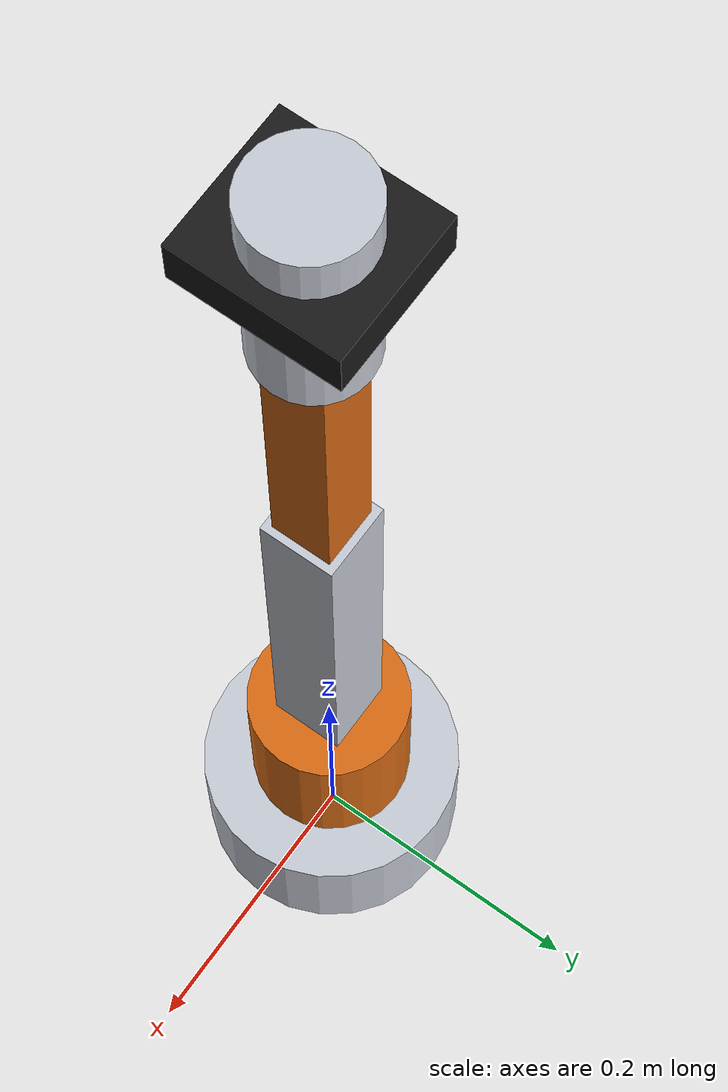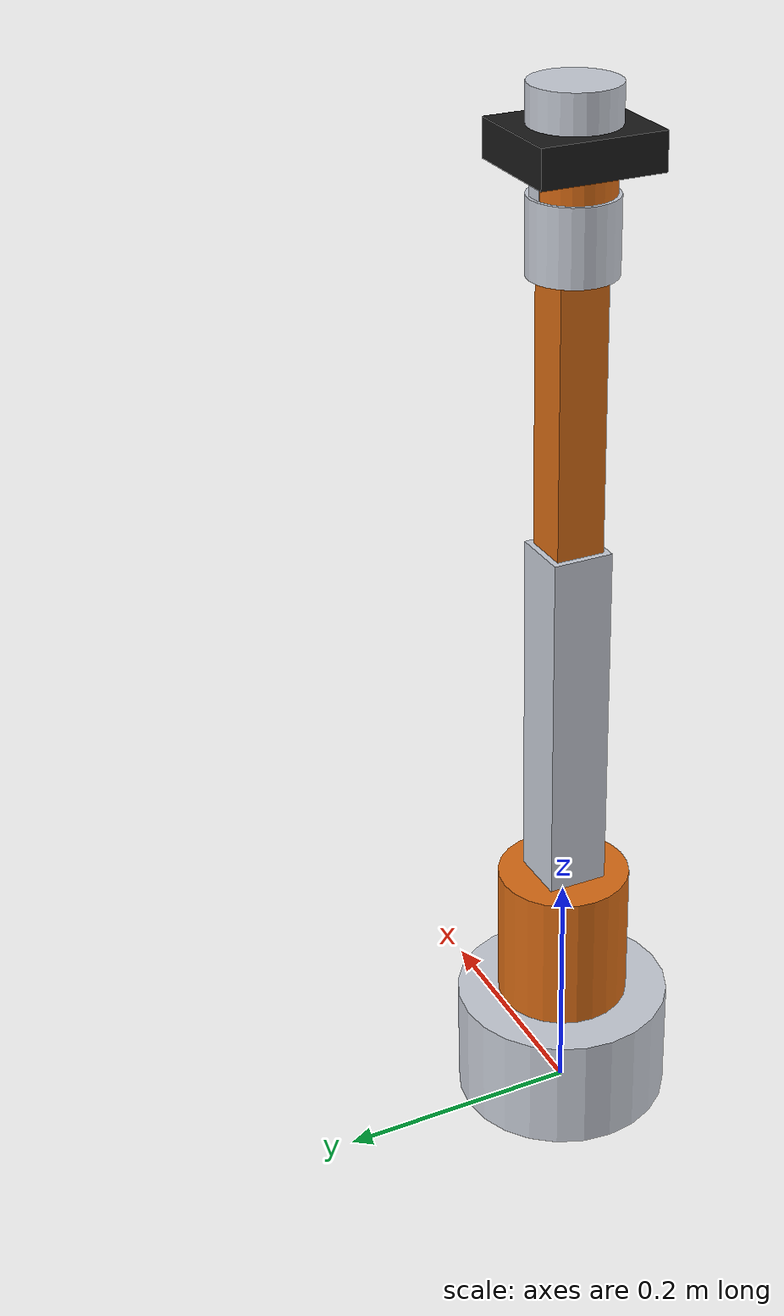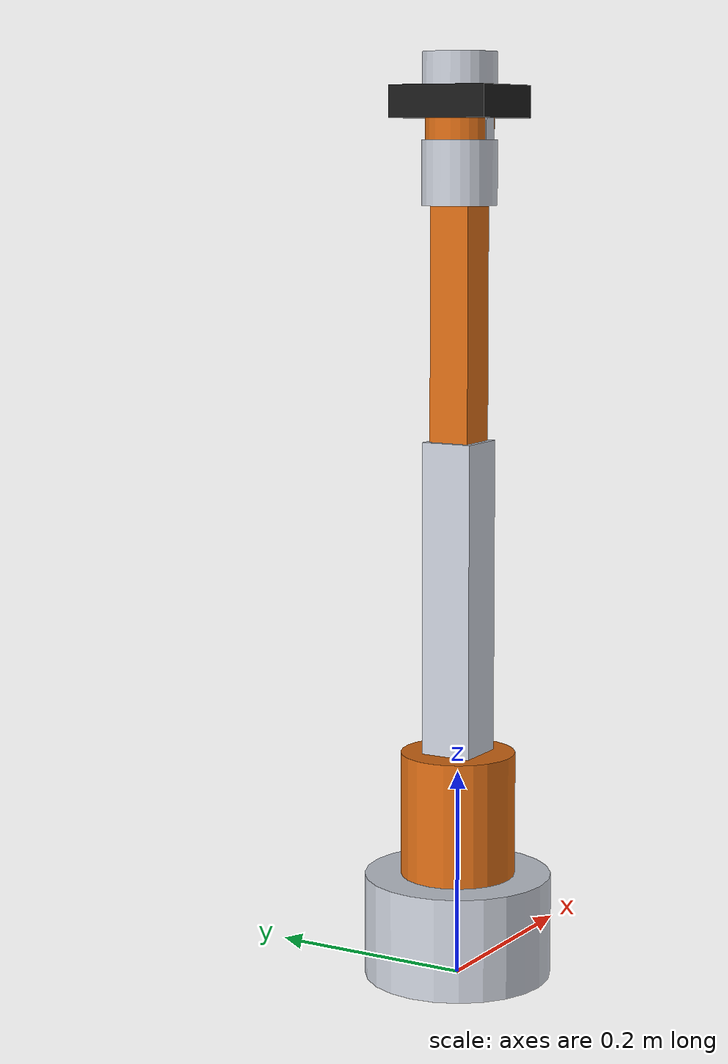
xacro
<?xml version="1.0"?>
<robot xmlns:xacro="http://www.ros.org/wiki/xacro" name="vg_arm">

  <!-- 手臂涂装避开红/绿/蓝检测区间，防止机身被当成方块 -->
  <xacro:arg name="controllers_file" default="$(find arm_description)/config/controllers.yaml"/>

  <material name="metal">
    <color rgba="0.78 0.80 0.84 1.0"/>
  </material>
  <material name="accent">
    <color rgba="0.85 0.42 0.08 1.0"/>
  </material>
  <material name="rubber">
    <color rgba="0.10 0.10 0.10 1.0"/>
  </material>

  <!-- 固定在 Gazebo 世界坐标，防止机械臂在重力下倾倒 -->
  <link name="world"/>
  <joint name="world_fixed" type="fixed">
    <parent link="world"/>
    <child link="base_link"/>
  </joint>

  <!-- base -->
  <link name="base_link">
    <visual>
      <origin xyz="0 0 0.05" rpy="0 0 0"/>
      <geometry>
        <cylinder radius="0.09" length="0.10"/>
      </geometry>
      <material name="metal"/>
    </visual>
    <collision>
      <origin xyz="0 0 0.05" rpy="0 0 0"/>
      <geometry>
        <cylinder radius="0.09" length="0.10"/>
      </geometry>
    </collision>
    <inertial>
      <origin xyz="0 0 0.05" rpy="0 0 0"/>
      <mass value="1.2"/>
      <inertia ixx="0.00343" ixy="0" ixz="0" iyy="0.00343" iyz="0" izz="0.00486"/>
    </inertial>
  </link>

  <!-- joint 1: base yaw -->
  <joint name="joint1" type="revolute">
    <parent link="base_link"/>
    <child link="link1"/>
    <origin xyz="0 0 0.10" rpy="0 0 0"/>
    <axis xyz="0 0 1"/>
    <limit lower="-3.1416" upper="3.1416" effort="30.0" velocity="1.5"/>
    <dynamics damping="0.2" friction="0.05"/>
  </joint>
  <link name="link1">
    <visual>
      <origin xyz="0 0 0.06" rpy="0 0 0"/>
      <geometry>
        <cylinder radius="0.055" length="0.12"/>
      </geometry>
      <material name="accent"/>
    </visual>
    <collision>
      <origin xyz="0 0 0.06" rpy="0 0 0"/>
      <geometry>
        <cylinder radius="0.055" length="0.12"/>
      </geometry>
    </collision>
    <inertial>
      <origin xyz="0 0 0.06" rpy="0 0 0"/>
      <mass value="0.8"/>
      <inertia ixx="0.001565" ixy="0" ixz="0" iyy="0.001565" iyz="0" izz="0.001210"/>
    </inertial>
  </link>

  <!-- joint 2: shoulder pitch -->
  <joint name="joint2" type="revolute">
    <parent link="link1"/>
    <child link="link2"/>
    <origin xyz="0 0 0.12" rpy="0 0 0"/>
    <axis xyz="0 1 0"/>
    <limit lower="-2.0" upper="2.0" effort="100.0" velocity="1.5"/>
    <dynamics damping="0.2" friction="0.05"/>
  </joint>
  <link name="link2">
    <visual>
      <origin xyz="0 0 0.15" rpy="0 0 0"/>
      <geometry>
        <box size="0.05 0.05 0.30"/>
      </geometry>
      <material name="metal"/>
    </visual>
    <collision>
      <origin xyz="0 0 0.15" rpy="0 0 0"/>
      <geometry>
        <box size="0.05 0.05 0.30"/>
      </geometry>
    </collision>
    <inertial>
      <origin xyz="0 0 0.15" rpy="0 0 0"/>
      <mass value="1.0"/>
      <inertia ixx="0.007708" ixy="0" ixz="0" iyy="0.007708" iyz="0" izz="0.000417"/>
    </inertial>
  </link>

  <!-- joint 3: elbow pitch -->
  <joint name="joint3" type="revolute">
    <parent link="link2"/>
    <child link="link3"/>
    <origin xyz="0 0 0.30" rpy="0 0 0"/>
    <axis xyz="0 1 0"/>
    <!-- effort 30 时远端目标（blue x≈0.48）descend 会被削顶，JTC 报 state tolerance；
         gz_ros2_control 的位置 PID 起步索取力矩远大于重力矩（实测约 2 N·m），故与 joint2 同放到 100 -->
    <limit lower="-2.5" upper="2.5" effort="100.0" velocity="1.5"/>
    <dynamics damping="0.2" friction="0.05"/>
  </joint>
  <link name="link3">
    <visual>
      <origin xyz="0 0 0.11" rpy="0 0 0"/>
      <geometry>
        <box size="0.04 0.04 0.22"/>
      </geometry>
      <material name="accent"/>
    </visual>
    <collision>
      <origin xyz="0 0 0.11" rpy="0 0 0"/>
      <geometry>
        <box size="0.04 0.04 0.22"/>
      </geometry>
    </collision>
    <inertial>
      <origin xyz="0 0 0.11" rpy="0 0 0"/>
      <mass value="0.7"/>
      <inertia ixx="0.002917" ixy="0" ixz="0" iyy="0.002917" iyz="0" izz="0.000187"/>
    </inertial>
  </link>

  <!-- joint 4: wrist roll -->
  <joint name="joint4" type="revolute">
    <parent link="link3"/>
    <child link="link4"/>
    <origin xyz="0 0 0.22" rpy="0 0 0"/>
    <axis xyz="1 0 0"/>
    <limit lower="-3.1416" upper="3.1416" effort="10.0" velocity="2.0"/>
    <dynamics damping="0.1" friction="0.02"/>
  </joint>
  <link name="link4">
    <visual>
      <origin xyz="0 0 0.03" rpy="0 0 0"/>
      <geometry>
        <cylinder radius="0.035" length="0.06"/>
      </geometry>
      <material name="metal"/>
    </visual>
    <collision>
      <origin xyz="0 0 0.03" rpy="0 0 0"/>
      <geometry>
        <cylinder radius="0.035" length="0.06"/>
      </geometry>
    </collision>
    <inertial>
      <origin xyz="0 0 0.03" rpy="0 0 0"/>
      <mass value="0.4"/>
      <inertia ixx="0.000243" ixy="0" ixz="0" iyy="0.000243" iyz="0" izz="0.000245"/>
    </inertial>
  </link>

  <!-- joint 5: wrist pitch（±3.1 才能让夹爪朝下抓取） -->
  <joint name="joint5" type="revolute">
    <parent link="link4"/>
    <child link="link5"/>
    <origin xyz="0 0 0.06" rpy="0 0 0"/>
    <axis xyz="0 1 0"/>
    <limit lower="-3.1" upper="3.1" effort="10.0" velocity="2.0"/>
    <dynamics damping="0.1" friction="0.02"/>
  </joint>
  <link name="link5">
    <visual>
      <origin xyz="0 0 0.025" rpy="0 0 0"/>
      <geometry>
        <cylinder radius="0.032" length="0.05"/>
      </geometry>
      <material name="accent"/>
    </visual>
    <collision>
      <origin xyz="0 0 0.025" rpy="0 0 0"/>
      <geometry>
        <cylinder radius="0.032" length="0.05"/>
      </geometry>
    </collision>
    <inertial>
      <origin xyz="0 0 0.025" rpy="0 0 0"/>
      <mass value="0.3"/>
      <inertia ixx="0.000139" ixy="0" ixz="0" iyy="0.000139" iyz="0" izz="0.000154"/>
    </inertial>
  </link>

  <!-- joint 6: wrist roll -->
  <joint name="joint6" type="revolute">
    <parent link="link5"/>
    <child link="tool0"/>
    <origin xyz="0 0 0.05" rpy="0 0 0"/>
    <axis xyz="1 0 0"/>
    <limit lower="-3.1416" upper="3.1416" effort="5.0" velocity="2.5"/>
    <dynamics damping="0.1" friction="0.02"/>
  </joint>
  <link name="tool0">
    <visual>
      <origin xyz="0 0 0.015" rpy="0 0 0"/>
      <geometry>
        <cylinder radius="0.035" length="0.03"/>
      </geometry>
      <material name="metal"/>
    </visual>
    <collision>
      <origin xyz="0 0 0.015" rpy="0 0 0"/>
      <geometry>
        <cylinder radius="0.035" length="0.03"/>
      </geometry>
    </collision>
    <inertial>
      <origin xyz="0 0 0.015" rpy="0 0 0"/>
      <mass value="0.25"/>
      <inertia ixx="0.0000953" ixy="0" ixz="0" iyy="0.0000953" iyz="0" izz="0.000153"/>
    </inertial>
  </link>

  <!--
    工具偏置：TCP +z 必须朝上，joint5/joint6 就得反向折约 127°，link5 的腕筒
    被折到两指正中间、深到与指尖同高，下探时整个插进方块体积（指间净空 70 mm，
    装不下腕筒 64 mm + 方块 50 mm）。夹爪整体下移 60 mm，TCP 落到 tool0 下方
    65 mm，腕部才能留在物体上方。
  -->
  <joint name="gripper_mount" type="fixed">
    <parent link="tool0"/>
    <child link="gripper_base"/>
    <origin xyz="0 0 -0.03" rpy="0 0 0"/>
  </joint>
  <link name="gripper_base">
    <visual>
      <origin xyz="0 0 0.015" rpy="0 0 0"/>
      <geometry>
        <box size="0.09 0.10 0.03"/>
      </geometry>
      <material name="rubber"/>
    </visual>
    <collision>
      <origin xyz="0 0 0.015" rpy="0 0 0"/>
      <geometry>
        <box size="0.09 0.10 0.03"/>
      </geometry>
    </collision>
    <inertial>
      <origin xyz="0 0 0.015" rpy="0 0 0"/>
      <mass value="0.3"/>
      <inertia ixx="0.000145" ixy="0" ixz="0" iyy="0.000225" iyz="0" izz="0.000325"/>
    </inertial>
  </link>

  <!-- left finger：闭合时间隙 40 mm，张开 15 mm 时间隙 70 mm，可夹 50 mm 方块 -->
  <joint name="finger_left_joint" type="prismatic">
    <parent link="gripper_base"/>
    <child link="finger_left"/>
    <origin xyz="0 0.026 0" rpy="0 0 0"/>
    <axis xyz="0 1 0"/>
    <limit lower="0.0" upper="0.03" effort="10.0" velocity="0.05"/>
  </joint>
  <link name="finger_left">
    <visual>
      <origin xyz="0 0 -0.03" rpy="0 0 0"/>
      <geometry>
        <box size="0.015 0.012 0.06"/>
      </geometry>
      <material name="metal"/>
    </visual>
    <collision>
      <origin xyz="0 0 -0.03" rpy="0 0 0"/>
      <geometry>
        <box size="0.015 0.012 0.06"/>
      </geometry>
    </collision>
    <inertial>
      <origin xyz="0 0 -0.03" rpy="0 0 0"/>
      <mass value="0.05"/>
      <inertia ixx="0.0000156" ixy="0" ixz="0" iyy="0.0000159" iyz="0" izz="0.00000154"/>
    </inertial>
  </link>

  <!-- right finger -->
  <joint name="finger_right_joint" type="prismatic">
    <parent link="gripper_base"/>
    <child link="finger_right"/>
    <origin xyz="0 -0.026 0" rpy="0 0 0"/>
    <axis xyz="0 -1 0"/>
    <limit lower="0.0" upper="0.03" effort="10.0" velocity="0.05"/>
  </joint>
  <link name="finger_right">
    <visual>
      <origin xyz="0 0 -0.03" rpy="0 0 0"/>
      <geometry>
        <box size="0.015 0.012 0.06"/>
      </geometry>
      <material name="metal"/>
    </visual>
    <collision>
      <origin xyz="0 0 -0.03" rpy="0 0 0"/>
      <geometry>
        <box size="0.015 0.012 0.06"/>
      </geometry>
    </collision>
    <inertial>
      <origin xyz="0 0 -0.03" rpy="0 0 0"/>
      <mass value="0.05"/>
      <inertia ixx="0.0000156" ixy="0" ixz="0" iyy="0.0000159" iyz="0" izz="0.00000154"/>
    </inertial>
  </link>

  <!-- TCP：两指中点，位于夹爪基座下方 35 mm；抓取时对准方块中心 -->
  <joint name="tcp_joint" type="fixed">
    <parent link="gripper_base"/>
    <child link="tcp"/>
    <origin xyz="0 0 -0.035" rpy="0 0 0"/>
  </joint>
  <link name="tcp">
    <inertial>
      <mass value="0.01"/>
      <inertia ixx="0.000001" ixy="0" ixz="0" iyy="0.000001" iyz="0" izz="0.000001"/>
    </inertial>
  </link>

  <!-- 指垫摩擦：摩擦不足会导致抬升时方块滑落 -->
  <gazebo reference="finger_left">
    <mu1>5.0</mu1>
    <mu2>5.0</mu2>
  </gazebo>
  <gazebo reference="finger_right">
    <mu1>5.0</mu1>
    <mu2>5.0</mu2>
  </gazebo>

  <ros2_control name="GazeboSimSystem" type="system">
    <hardware>
      <plugin>gz_ros2_control/GazeboSimSystem</plugin>
    </hardware>
    <joint name="joint1">
      <command_interface name="position"/>
      <state_interface name="position"/>
      <state_interface name="velocity"/>
      <state_interface name="effort"/>
    </joint>
    <joint name="joint2">
      <command_interface name="position"/>
      <state_interface name="position"/>
      <state_interface name="velocity"/>
      <state_interface name="effort"/>
    </joint>
    <joint name="joint3">
      <command_interface name="position"/>
      <state_interface name="position"/>
      <state_interface name="velocity"/>
      <state_interface name="effort"/>
    </joint>
    <joint name="joint4">
      <command_interface name="position"/>
      <state_interface name="position"/>
      <state_interface name="velocity"/>
      <state_interface name="effort"/>
    </joint>
    <joint name="joint5">
      <command_interface name="position"/>
      <state_interface name="position"/>
      <state_interface name="velocity"/>
      <state_interface name="effort"/>
    </joint>
    <joint name="joint6">
      <command_interface name="position"/>
      <state_interface name="position"/>
      <state_interface name="velocity"/>
      <state_interface name="effort"/>
    </joint>
    <joint name="finger_left_joint">
      <command_interface name="position"/>
      <state_interface name="position"/>
      <state_interface name="velocity"/>
      <state_interface name="effort"/>
    </joint>
    <joint name="finger_right_joint">
      <command_interface name="position"/>
      <state_interface name="position"/>
      <state_interface name="velocity"/>
      <state_interface name="effort"/>
    </joint>
  </ros2_control>

  <gazebo>
    <plugin filename="libgz_ros2_control-system.so" name="gz_ros2_control::GazeboSimROS2ControlPlugin">
      <parameters>$(arg controllers_file)</parameters>
    </plugin>
  </gazebo>

</robot>
